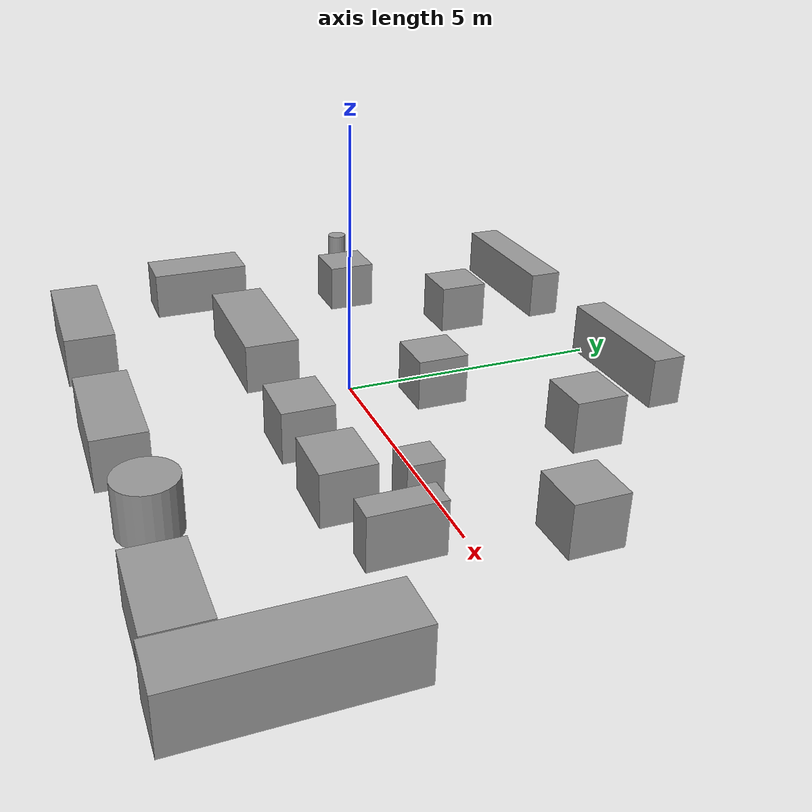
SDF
<?xml version='1.0'?>
<sdf version='1.7'>
  <model name='Clase3'>
    <link name='link_0'>
      <inertial>
        <mass>3.61204</mass>
        <inertia>
          <ixx>4.22813</ixx>
          <ixy>0</ixy>
          <ixz>0</ixz>
          <iyy>0.602007</iyy>
          <iyz>0</iyz>
          <izz>4.22813</izz>
        </inertia>
        <pose>0 0 0 0 -0 0</pose>
      </inertial>
      <pose>6.61801 -3.21464 -0.000816 0 -0 0</pose>
      <visual name='visual'>
        <pose>0 0 0 0 -0 0</pose>
        <geometry>
          <box>
            <size>1 3.61203 1</size>
          </box>
        </geometry>
        <material>
          <lighting>1</lighting>
          <script>
            <uri>file://media/materials/scripts/gazebo.material</uri>
            <name>Gazebo/Grey</name>
          </script>
          <shader type='pixel'/>
        </material>
        <transparency>0</transparency>
        <cast_shadows>1</cast_shadows>
      </visual>
      <collision name='collision'>
        <laser_retro>0</laser_retro>
        <max_contacts>10</max_contacts>
        <pose>0 0 0 0 -0 0</pose>
        <geometry>
          <box>
            <size>1 3.61203 1</size>
          </box>
        </geometry>
        <surface>
          <friction>
            <ode>
              <mu>1</mu>
              <mu2>1</mu2>
              <fdir1>0 0 0</fdir1>
              <slip1>0</slip1>
              <slip2>0</slip2>
            </ode>
            <torsional>
              <coefficient>1</coefficient>
              <patch_radius>0</patch_radius>
              <surface_radius>0</surface_radius>
              <use_patch_radius>1</use_patch_radius>
              <ode>
                <slip>0</slip>
              </ode>
            </torsional>
          </friction>
          <bounce>
            <restitution_coefficient>0</restitution_coefficient>
            <threshold>1e+06</threshold>
          </bounce>
          <contact>
            <collide_without_contact>0</collide_without_contact>
            <collide_without_contact_bitmask>1</collide_without_contact_bitmask>
            <collide_bitmask>1</collide_bitmask>
            <ode>
              <soft_cfm>0</soft_cfm>
              <soft_erp>0.2</soft_erp>
              <kp>1e+13</kp>
              <kd>1</kd>
              <max_vel>0.01</max_vel>
              <min_depth>0</min_depth>
            </ode>
            <bullet>
              <split_impulse>1</split_impulse>
              <split_impulse_penetration_threshold>-0.01</split_impulse_penetration_threshold>
              <soft_cfm>0</soft_cfm>
              <soft_erp>0.2</soft_erp>
              <kp>1e+13</kp>
              <kd>1</kd>
            </bullet>
          </contact>
        </surface>
      </collision>
    </link>
    <link name='link_1'>
      <inertial>
        <mass>1.84807</mass>
        <inertia>
          <ixx>0.308012</ixx>
          <ixy>0</ixy>
          <ixz>0</ixz>
          <iyy>0.679994</iyy>
          <iyz>0</iyz>
          <izz>0.679994</izz>
        </inertia>
        <pose>0 0 0 0 -0 0</pose>
      </inertial>
      <pose>5.17005 -4.46709 -0.000816 0 -0 0</pose>
      <visual name='visual'>
        <pose>0 0 0 0 -0 0</pose>
        <geometry>
          <box>
            <size>1.84807 1 1</size>
          </box>
        </geometry>
        <material>
          <lighting>1</lighting>
          <script>
            <uri>file://media/materials/scripts/gazebo.material</uri>
            <name>Gazebo/Grey</name>
          </script>
          <shader type='pixel'/>
        </material>
        <transparency>0</transparency>
        <cast_shadows>1</cast_shadows>
      </visual>
      <collision name='collision'>
        <laser_retro>0</laser_retro>
        <max_contacts>10</max_contacts>
        <pose>0 0 0 0 -0 0</pose>
        <geometry>
          <box>
            <size>1.84807 1 1</size>
          </box>
        </geometry>
        <surface>
          <friction>
            <ode>
              <mu>1</mu>
              <mu2>1</mu2>
              <fdir1>0 0 0</fdir1>
              <slip1>0</slip1>
              <slip2>0</slip2>
            </ode>
            <torsional>
              <coefficient>1</coefficient>
              <patch_radius>0</patch_radius>
              <surface_radius>0</surface_radius>
              <use_patch_radius>1</use_patch_radius>
              <ode>
                <slip>0</slip>
              </ode>
            </torsional>
          </friction>
          <bounce>
            <restitution_coefficient>0</restitution_coefficient>
            <threshold>1e+06</threshold>
          </bounce>
          <contact>
            <collide_without_contact>0</collide_without_contact>
            <collide_without_contact_bitmask>1</collide_without_contact_bitmask>
            <collide_bitmask>1</collide_bitmask>
            <ode>
              <soft_cfm>0</soft_cfm>
              <soft_erp>0.2</soft_erp>
              <kp>1e+13</kp>
              <kd>1</kd>
              <max_vel>0.01</max_vel>
              <min_depth>0</min_depth>
            </ode>
            <bullet>
              <split_impulse>1</split_impulse>
              <split_impulse_penetration_threshold>-0.01</split_impulse_penetration_threshold>
              <soft_cfm>0</soft_cfm>
              <soft_erp>0.2</soft_erp>
              <kp>1e+13</kp>
              <kd>1</kd>
            </bullet>
          </contact>
        </surface>
      </collision>
    </link>
    <link name='link_10'>
      <inertial>
        <mass>1</mass>
        <inertia>
          <ixx>0.166667</ixx>
          <ixy>0</ixy>
          <ixz>0</ixz>
          <iyy>0.166667</iyy>
          <iyz>0</iyz>
          <izz>0.166667</izz>
        </inertia>
      </inertial>
      <pose>-0.13853 1.78004 -0.000816 0 -0 0</pose>
      <visual name='visual'>
        <pose>0 0 0 0 -0 0</pose>
        <geometry>
          <box>
            <size>1 1 1</size>
          </box>
        </geometry>
        <material>
          <lighting>1</lighting>
          <script>
            <uri>file://media/materials/scripts/gazebo.material</uri>
            <name>Gazebo/Grey</name>
          </script>
          <shader type='pixel'/>
        </material>
        <transparency>0</transparency>
        <cast_shadows>1</cast_shadows>
      </visual>
      <collision name='collision'>
        <laser_retro>0</laser_retro>
        <max_contacts>10</max_contacts>
        <pose>0 0 0 0 -0 0</pose>
        <geometry>
          <box>
            <size>1 1 1</size>
          </box>
        </geometry>
        <surface>
          <friction>
            <ode>
              <mu>1</mu>
              <mu2>1</mu2>
              <fdir1>0 0 0</fdir1>
              <slip1>0</slip1>
              <slip2>0</slip2>
            </ode>
            <torsional>
              <coefficient>1</coefficient>
              <patch_radius>0</patch_radius>
              <surface_radius>0</surface_radius>
              <use_patch_radius>1</use_patch_radius>
              <ode>
                <slip>0</slip>
              </ode>
            </torsional>
          </friction>
          <bounce>
            <restitution_coefficient>0</restitution_coefficient>
            <threshold>1e+06</threshold>
          </bounce>
          <contact>
            <collide_without_contact>0</collide_without_contact>
            <collide_without_contact_bitmask>1</collide_without_contact_bitmask>
            <collide_bitmask>1</collide_bitmask>
            <ode>
              <soft_cfm>0</soft_cfm>
              <soft_erp>0.2</soft_erp>
              <kp>1e+13</kp>
              <kd>1</kd>
              <max_vel>0.01</max_vel>
              <min_depth>0</min_depth>
            </ode>
            <bullet>
              <split_impulse>1</split_impulse>
              <split_impulse_penetration_threshold>-0.01</split_impulse_penetration_threshold>
              <soft_cfm>0</soft_cfm>
              <soft_erp>0.2</soft_erp>
              <kp>1e+13</kp>
              <kd>1</kd>
            </bullet>
          </contact>
        </surface>
      </collision>
    </link>
    <link name='link_11'>
      <inertial>
        <mass>1</mass>
        <inertia>
          <ixx>0.166667</ixx>
          <ixy>0</ixy>
          <ixz>0</ixz>
          <iyy>0.166667</iyy>
          <iyz>0</iyz>
          <izz>0.166667</izz>
        </inertia>
      </inertial>
      <pose>-5.26532 1.78358 -0.000816 0 -0 0</pose>
      <visual name='visual'>
        <pose>0 0 0 0 -0 0</pose>
        <geometry>
          <box>
            <size>1 1 1</size>
          </box>
        </geometry>
        <material>
          <lighting>1</lighting>
          <script>
            <uri>file://media/materials/scripts/gazebo.material</uri>
            <name>Gazebo/Grey</name>
          </script>
          <shader type='pixel'/>
        </material>
        <transparency>0</transparency>
        <cast_shadows>1</cast_shadows>
      </visual>
      <collision name='collision'>
        <laser_retro>0</laser_retro>
        <max_contacts>10</max_contacts>
        <pose>0 0 0 0 -0 0</pose>
        <geometry>
          <box>
            <size>1 1 1</size>
          </box>
        </geometry>
        <surface>
          <friction>
            <ode>
              <mu>1</mu>
              <mu2>1</mu2>
              <fdir1>0 0 0</fdir1>
              <slip1>0</slip1>
              <slip2>0</slip2>
            </ode>
            <torsional>
              <coefficient>1</coefficient>
              <patch_radius>0</patch_radius>
              <surface_radius>0</surface_radius>
              <use_patch_radius>1</use_patch_radius>
              <ode>
                <slip>0</slip>
              </ode>
            </torsional>
          </friction>
          <bounce>
            <restitution_coefficient>0</restitution_coefficient>
            <threshold>1e+06</threshold>
          </bounce>
          <contact>
            <collide_without_contact>0</collide_without_contact>
            <collide_without_contact_bitmask>1</collide_without_contact_bitmask>
            <collide_bitmask>1</collide_bitmask>
            <ode>
              <soft_cfm>0</soft_cfm>
              <soft_erp>0.2</soft_erp>
              <kp>1e+13</kp>
              <kd>1</kd>
              <max_vel>0.01</max_vel>
              <min_depth>0</min_depth>
            </ode>
            <bullet>
              <split_impulse>1</split_impulse>
              <split_impulse_penetration_threshold>-0.01</split_impulse_penetration_threshold>
              <soft_cfm>0</soft_cfm>
              <soft_erp>0.2</soft_erp>
              <kp>1e+13</kp>
              <kd>1</kd>
            </bullet>
          </contact>
        </surface>
      </collision>
    </link>
    <link name='link_12'>
      <inertial>
        <mass>1</mass>
        <inertia>
          <ixx>0.166667</ixx>
          <ixy>0</ixy>
          <ixz>0</ixz>
          <iyy>0.166667</iyy>
          <iyz>0</iyz>
          <izz>0.166667</izz>
        </inertia>
      </inertial>
      <pose>2.27723 3.7391 -0.000816 0 -0 0</pose>
      <visual name='visual'>
        <pose>0 0 0 0 -0 0</pose>
        <geometry>
          <box>
            <size>1 1 1</size>
          </box>
        </geometry>
        <material>
          <lighting>1</lighting>
          <script>
            <uri>file://media/materials/scripts/gazebo.material</uri>
            <name>Gazebo/Grey</name>
          </script>
          <shader type='pixel'/>
        </material>
        <transparency>0</transparency>
        <cast_shadows>1</cast_shadows>
      </visual>
      <collision name='collision'>
        <laser_retro>0</laser_retro>
        <max_contacts>10</max_contacts>
        <pose>0 0 0 0 -0 0</pose>
        <geometry>
          <box>
            <size>1 1 1</size>
          </box>
        </geometry>
        <surface>
          <friction>
            <ode>
              <mu>1</mu>
              <mu2>1</mu2>
              <fdir1>0 0 0</fdir1>
              <slip1>0</slip1>
              <slip2>0</slip2>
            </ode>
            <torsional>
              <coefficient>1</coefficient>
              <patch_radius>0</patch_radius>
              <surface_radius>0</surface_radius>
              <use_patch_radius>1</use_patch_radius>
              <ode>
                <slip>0</slip>
              </ode>
            </torsional>
          </friction>
          <bounce>
            <restitution_coefficient>0</restitution_coefficient>
            <threshold>1e+06</threshold>
          </bounce>
          <contact>
            <collide_without_contact>0</collide_without_contact>
            <collide_without_contact_bitmask>1</collide_without_contact_bitmask>
            <collide_bitmask>1</collide_bitmask>
            <ode>
              <soft_cfm>0</soft_cfm>
              <soft_erp>0.2</soft_erp>
              <kp>1e+13</kp>
              <kd>1</kd>
              <max_vel>0.01</max_vel>
              <min_depth>0</min_depth>
            </ode>
            <bullet>
              <split_impulse>1</split_impulse>
              <split_impulse_penetration_threshold>-0.01</split_impulse_penetration_threshold>
              <soft_cfm>0</soft_cfm>
              <soft_erp>0.2</soft_erp>
              <kp>1e+13</kp>
              <kd>1</kd>
            </bullet>
          </contact>
        </surface>
      </collision>
    </link>
    <link name='link_13'>
      <inertial>
        <mass>1</mass>
        <inertia>
          <ixx>0.166667</ixx>
          <ixy>0</ixy>
          <ixz>0</ixz>
          <iyy>0.166667</iyy>
          <iyz>0</iyz>
          <izz>0.166667</izz>
        </inertia>
      </inertial>
      <pose>-3.27919 3.70693 -0.000816 0 -0 0</pose>
      <visual name='visual'>
        <pose>0 0 0 0 -0 0</pose>
        <geometry>
          <box>
            <size>1 1 1</size>
          </box>
        </geometry>
        <material>
          <lighting>1</lighting>
          <script>
            <uri>file://media/materials/scripts/gazebo.material</uri>
            <name>Gazebo/Grey</name>
          </script>
          <shader type='pixel'/>
        </material>
        <transparency>0</transparency>
        <cast_shadows>1</cast_shadows>
      </visual>
      <collision name='collision'>
        <laser_retro>0</laser_retro>
        <max_contacts>10</max_contacts>
        <pose>0 0 0 0 -0 0</pose>
        <geometry>
          <box>
            <size>1 1 1</size>
          </box>
        </geometry>
        <surface>
          <friction>
            <ode>
              <mu>1</mu>
              <mu2>1</mu2>
              <fdir1>0 0 0</fdir1>
              <slip1>0</slip1>
              <slip2>0</slip2>
            </ode>
            <torsional>
              <coefficient>1</coefficient>
              <patch_radius>0</patch_radius>
              <surface_radius>0</surface_radius>
              <use_patch_radius>1</use_patch_radius>
              <ode>
                <slip>0</slip>
              </ode>
            </torsional>
          </friction>
          <bounce>
            <restitution_coefficient>0</restitution_coefficient>
            <threshold>1e+06</threshold>
          </bounce>
          <contact>
            <collide_without_contact>0</collide_without_contact>
            <collide_without_contact_bitmask>1</collide_without_contact_bitmask>
            <collide_bitmask>1</collide_bitmask>
            <ode>
              <soft_cfm>0</soft_cfm>
              <soft_erp>0.2</soft_erp>
              <kp>1e+13</kp>
              <kd>1</kd>
              <max_vel>0.01</max_vel>
              <min_depth>0</min_depth>
            </ode>
            <bullet>
              <split_impulse>1</split_impulse>
              <split_impulse_penetration_threshold>-0.01</split_impulse_penetration_threshold>
              <soft_cfm>0</soft_cfm>
              <soft_erp>0.2</soft_erp>
              <kp>1e+13</kp>
              <kd>1</kd>
            </bullet>
          </contact>
        </surface>
      </collision>
    </link>
    <link name='link_14'>
      <inertial>
        <mass>2.12787</mass>
        <inertia>
          <ixx>0.259623</ixx>
          <ixy>0</ixy>
          <ixz>0</ixz>
          <iyy>1.90718</iyy>
          <iyz>0</iyz>
          <izz>1.81216</izz>
        </inertia>
        <pose>0 0 0 0 -0 0</pose>
      </inertial>
      <pose>-4.39907 5.79212 -0.000816 0 -0 0</pose>
      <visual name='visual'>
        <pose>0 0 0 0 -0 0</pose>
        <geometry>
          <box>
            <size>3.12337 0.68127 1</size>
          </box>
        </geometry>
        <material>
          <lighting>1</lighting>
          <script>
            <uri>file://media/materials/scripts/gazebo.material</uri>
            <name>Gazebo/Grey</name>
          </script>
          <shader type='pixel'/>
        </material>
        <transparency>0</transparency>
        <cast_shadows>1</cast_shadows>
      </visual>
      <collision name='collision'>
        <laser_retro>0</laser_retro>
        <max_contacts>10</max_contacts>
        <pose>0 0 0 0 -0 0</pose>
        <geometry>
          <box>
            <size>3.12337 0.68127 1</size>
          </box>
        </geometry>
        <surface>
          <friction>
            <ode>
              <mu>1</mu>
              <mu2>1</mu2>
              <fdir1>0 0 0</fdir1>
              <slip1>0</slip1>
              <slip2>0</slip2>
            </ode>
            <torsional>
              <coefficient>1</coefficient>
              <patch_radius>0</patch_radius>
              <surface_radius>0</surface_radius>
              <use_patch_radius>1</use_patch_radius>
              <ode>
                <slip>0</slip>
              </ode>
            </torsional>
          </friction>
          <bounce>
            <restitution_coefficient>0</restitution_coefficient>
            <threshold>1e+06</threshold>
          </bounce>
          <contact>
            <collide_without_contact>0</collide_without_contact>
            <collide_without_contact_bitmask>1</collide_without_contact_bitmask>
            <collide_bitmask>1</collide_bitmask>
            <ode>
              <soft_cfm>0</soft_cfm>
              <soft_erp>0.2</soft_erp>
              <kp>1e+13</kp>
              <kd>1</kd>
              <max_vel>0.01</max_vel>
              <min_depth>0</min_depth>
            </ode>
            <bullet>
              <split_impulse>1</split_impulse>
              <split_impulse_penetration_threshold>-0.01</split_impulse_penetration_threshold>
              <soft_cfm>0</soft_cfm>
              <soft_erp>0.2</soft_erp>
              <kp>1e+13</kp>
              <kd>1</kd>
            </bullet>
          </contact>
        </surface>
      </collision>
    </link>
    <link name='link_15'>
      <inertial>
        <mass>2.40246</mass>
        <inertia>
          <ixx>0.400409</ixx>
          <ixy>0</ixy>
          <ixz>0</ixz>
          <iyy>1.35574</iyy>
          <iyz>0</iyz>
          <izz>1.35574</izz>
        </inertia>
        <pose>0 0 0 0 -0 0</pose>
      </inertial>
      <pose>-0.017267 -4.46727 -0.000816 0 -0 0</pose>
      <visual name='visual'>
        <pose>0 0 0 0 -0 0</pose>
        <geometry>
          <box>
            <size>2.40245 1 1</size>
          </box>
        </geometry>
        <material>
          <lighting>1</lighting>
          <script>
            <uri>file://media/materials/scripts/gazebo.material</uri>
            <name>Gazebo/Grey</name>
          </script>
          <shader type='pixel'/>
        </material>
        <transparency>0</transparency>
        <cast_shadows>1</cast_shadows>
      </visual>
      <collision name='collision'>
        <laser_retro>0</laser_retro>
        <max_contacts>10</max_contacts>
        <pose>0 0 0 0 -0 0</pose>
        <geometry>
          <box>
            <size>2.40245 1 1</size>
          </box>
        </geometry>
        <surface>
          <friction>
            <ode>
              <mu>1</mu>
              <mu2>1</mu2>
              <fdir1>0 0 0</fdir1>
              <slip1>0</slip1>
              <slip2>0</slip2>
            </ode>
            <torsional>
              <coefficient>1</coefficient>
              <patch_radius>0</patch_radius>
              <surface_radius>0</surface_radius>
              <use_patch_radius>1</use_patch_radius>
              <ode>
                <slip>0</slip>
              </ode>
            </torsional>
          </friction>
          <bounce>
            <restitution_coefficient>0</restitution_coefficient>
            <threshold>1e+06</threshold>
          </bounce>
          <contact>
            <collide_without_contact>0</collide_without_contact>
            <collide_without_contact_bitmask>1</collide_without_contact_bitmask>
            <collide_bitmask>1</collide_bitmask>
            <ode>
              <soft_cfm>0</soft_cfm>
              <soft_erp>0.2</soft_erp>
              <kp>1e+13</kp>
              <kd>1</kd>
              <max_vel>0.01</max_vel>
              <min_depth>0</min_depth>
            </ode>
            <bullet>
              <split_impulse>1</split_impulse>
              <split_impulse_penetration_threshold>-0.01</split_impulse_penetration_threshold>
              <soft_cfm>0</soft_cfm>
              <soft_erp>0.2</soft_erp>
              <kp>1e+13</kp>
              <kd>1</kd>
            </bullet>
          </contact>
        </surface>
      </collision>
    </link>
    <link name='link_16'>
      <inertial>
        <mass>0.699838</mass>
        <inertia>
          <ixx>0.163036</ixx>
          <ixy>0</ixy>
          <ixz>0</ixz>
          <iyy>0.0742282</iyy>
          <iyz>0</iyz>
          <izz>0.120624</izz>
        </inertia>
        <pose>0 0 0 0 -0 0</pose>
      </inertial>
      <pose>4.43541 -0.77658 -0.000816 0 -0 0</pose>
      <visual name='visual'>
        <pose>0 0 0 0 -0 0</pose>
        <geometry>
          <box>
            <size>0.522282 1.33998 1</size>
          </box>
        </geometry>
        <material>
          <lighting>1</lighting>
          <script>
            <uri>file://media/materials/scripts/gazebo.material</uri>
            <name>Gazebo/Grey</name>
          </script>
          <shader type='pixel'/>
        </material>
        <transparency>0</transparency>
        <cast_shadows>1</cast_shadows>
      </visual>
      <collision name='collision'>
        <laser_retro>0</laser_retro>
        <max_contacts>10</max_contacts>
        <pose>0 0 0 0 -0 0</pose>
        <geometry>
          <box>
            <size>0.522282 1.33998 1</size>
          </box>
        </geometry>
        <surface>
          <friction>
            <ode>
              <mu>1</mu>
              <mu2>1</mu2>
              <fdir1>0 0 0</fdir1>
              <slip1>0</slip1>
              <slip2>0</slip2>
            </ode>
            <torsional>
              <coefficient>1</coefficient>
              <patch_radius>0</patch_radius>
              <surface_radius>0</surface_radius>
              <use_patch_radius>1</use_patch_radius>
              <ode>
                <slip>0</slip>
              </ode>
            </torsional>
          </friction>
          <bounce>
            <restitution_coefficient>0</restitution_coefficient>
            <threshold>1e+06</threshold>
          </bounce>
          <contact>
            <collide_without_contact>0</collide_without_contact>
            <collide_without_contact_bitmask>1</collide_without_contact_bitmask>
            <collide_bitmask>1</collide_bitmask>
            <ode>
              <soft_cfm>0</soft_cfm>
              <soft_erp>0.2</soft_erp>
              <kp>1e+13</kp>
              <kd>1</kd>
              <max_vel>0.01</max_vel>
              <min_depth>0</min_depth>
            </ode>
            <bullet>
              <split_impulse>1</split_impulse>
              <split_impulse_penetration_threshold>-0.01</split_impulse_penetration_threshold>
              <soft_cfm>0</soft_cfm>
              <soft_erp>0.2</soft_erp>
              <kp>1e+13</kp>
              <kd>1</kd>
            </bullet>
          </contact>
        </surface>
      </collision>
    </link>
    <link name='link_18'>
      <inertial>
        <mass>1.84162</mass>
        <inertia>
          <ixx>0.220326</ixx>
          <ixy>0</ixy>
          <ixz>0</ixz>
          <iyy>1.34835</iyy>
          <iyz>0</iyz>
          <izz>1.26174</izz>
        </inertia>
        <pose>0 0 0 0 -0 0</pose>
      </inertial>
      <pose>0.402204 5.82161 -0.000816 0 -0 0</pose>
      <visual name='visual'>
        <pose>0 0 0 0 -0 0</pose>
        <geometry>
          <box>
            <size>2.79032 0.660037 1</size>
          </box>
        </geometry>
        <material>
          <lighting>1</lighting>
          <script>
            <uri>file://media/materials/scripts/gazebo.material</uri>
            <name>Gazebo/Grey</name>
          </script>
          <shader type='pixel'/>
        </material>
        <transparency>0</transparency>
        <cast_shadows>1</cast_shadows>
      </visual>
      <collision name='collision'>
        <laser_retro>0</laser_retro>
        <max_contacts>10</max_contacts>
        <pose>0 0 0 0 -0 0</pose>
        <geometry>
          <box>
            <size>2.79032 0.660037 1</size>
          </box>
        </geometry>
        <surface>
          <friction>
            <ode>
              <mu>1</mu>
              <mu2>1</mu2>
              <fdir1>0 0 0</fdir1>
              <slip1>0</slip1>
              <slip2>0</slip2>
            </ode>
            <torsional>
              <coefficient>1</coefficient>
              <patch_radius>0</patch_radius>
              <surface_radius>0</surface_radius>
              <use_patch_radius>1</use_patch_radius>
              <ode>
                <slip>0</slip>
              </ode>
            </torsional>
          </friction>
          <bounce>
            <restitution_coefficient>0</restitution_coefficient>
            <threshold>1e+06</threshold>
          </bounce>
          <contact>
            <collide_without_contact>0</collide_without_contact>
            <collide_without_contact_bitmask>1</collide_without_contact_bitmask>
            <collide_bitmask>1</collide_bitmask>
            <ode>
              <soft_cfm>0</soft_cfm>
              <soft_erp>0.2</soft_erp>
              <kp>1e+13</kp>
              <kd>1</kd>
              <max_vel>0.01</max_vel>
              <min_depth>0</min_depth>
            </ode>
            <bullet>
              <split_impulse>1</split_impulse>
              <split_impulse_penetration_threshold>-0.01</split_impulse_penetration_threshold>
              <soft_cfm>0</soft_cfm>
              <soft_erp>0.2</soft_erp>
              <kp>1e+13</kp>
              <kd>1</kd>
            </bullet>
          </contact>
        </surface>
      </collision>
    </link>
    <link name='link_2'>
      <inertial>
        <mass>1.21978</mass>
        <inertia>
          <ixx>0.203297</ixx>
          <ixy>0</ixy>
          <ixz>0</ixz>
          <iyy>0.252889</iyy>
          <iyz>0</iyz>
          <izz>0.252889</izz>
        </inertia>
        <pose>0 0 0 0 -0 0</pose>
      </inertial>
      <pose>2.79577 -1.2372 -0.000816 0 -0 0</pose>
      <visual name='visual'>
        <pose>0 0 0 0 -0 0</pose>
        <geometry>
          <box>
            <size>1.21978 1 1</size>
          </box>
        </geometry>
        <material>
          <lighting>1</lighting>
          <script>
            <uri>file://media/materials/scripts/gazebo.material</uri>
            <name>Gazebo/Grey</name>
          </script>
          <shader type='pixel'/>
        </material>
        <transparency>0</transparency>
        <cast_shadows>1</cast_shadows>
      </visual>
      <collision name='collision'>
        <laser_retro>0</laser_retro>
        <max_contacts>10</max_contacts>
        <pose>0 0 0 0 -0 0</pose>
        <geometry>
          <box>
            <size>1.21978 1 1</size>
          </box>
        </geometry>
        <surface>
          <friction>
            <ode>
              <mu>1</mu>
              <mu2>1</mu2>
              <fdir1>0 0 0</fdir1>
              <slip1>0</slip1>
              <slip2>0</slip2>
            </ode>
            <torsional>
              <coefficient>1</coefficient>
              <patch_radius>0</patch_radius>
              <surface_radius>0</surface_radius>
              <use_patch_radius>1</use_patch_radius>
              <ode>
                <slip>0</slip>
              </ode>
            </torsional>
          </friction>
          <bounce>
            <restitution_coefficient>0</restitution_coefficient>
            <threshold>1e+06</threshold>
          </bounce>
          <contact>
            <collide_without_contact>0</collide_without_contact>
            <collide_without_contact_bitmask>1</collide_without_contact_bitmask>
            <collide_bitmask>1</collide_bitmask>
            <ode>
              <soft_cfm>0</soft_cfm>
              <soft_erp>0.2</soft_erp>
              <kp>1e+13</kp>
              <kd>1</kd>
              <max_vel>0.01</max_vel>
              <min_depth>0</min_depth>
            </ode>
            <bullet>
              <split_impulse>1</split_impulse>
              <split_impulse_penetration_threshold>-0.01</split_impulse_penetration_threshold>
              <soft_cfm>0</soft_cfm>
              <soft_erp>0.2</soft_erp>
              <kp>1e+13</kp>
              <kd>1</kd>
            </bullet>
          </contact>
        </surface>
      </collision>
    </link>
    <link name='link_21'>
      <inertial>
        <mass>0.176204</mass>
        <inertia>
          <ixx>0.0166241</ixx>
          <ixy>0</ixy>
          <ixz>0</ixz>
          <iyy>0.0166241</iyy>
          <iyz>0</iyz>
          <izz>0.00388098</izz>
        </inertia>
        <pose>0 0 0 0 -0 0</pose>
      </inertial>
      <pose>-6.98219 2.18202 -0.000816 0 -0 0</pose>
      <visual name='visual'>
        <pose>0 0 0 0 -0 0</pose>
        <geometry>
          <cylinder>
            <radius>0.209884</radius>
            <length>1</length>
          </cylinder>
        </geometry>
        <material>
          <lighting>1</lighting>
          <script>
            <uri>file://media/materials/scripts/gazebo.material</uri>
            <name>Gazebo/Grey</name>
          </script>
          <shader type='pixel'/>
        </material>
        <transparency>0</transparency>
        <cast_shadows>1</cast_shadows>
      </visual>
      <collision name='collision'>
        <laser_retro>0</laser_retro>
        <max_contacts>10</max_contacts>
        <pose>0 0 0 0 -0 0</pose>
        <geometry>
          <cylinder>
            <radius>0.209884</radius>
            <length>1</length>
          </cylinder>
        </geometry>
        <surface>
          <friction>
            <ode>
              <mu>1</mu>
              <mu2>1</mu2>
              <fdir1>0 0 0</fdir1>
              <slip1>0</slip1>
              <slip2>0</slip2>
            </ode>
            <torsional>
              <coefficient>1</coefficient>
              <patch_radius>0</patch_radius>
              <surface_radius>0</surface_radius>
              <use_patch_radius>1</use_patch_radius>
              <ode>
                <slip>0</slip>
              </ode>
            </torsional>
          </friction>
          <bounce>
            <restitution_coefficient>0</restitution_coefficient>
            <threshold>1e+06</threshold>
          </bounce>
          <contact>
            <collide_without_contact>0</collide_without_contact>
            <collide_without_contact_bitmask>1</collide_without_contact_bitmask>
            <collide_bitmask>1</collide_bitmask>
            <ode>
              <soft_cfm>0</soft_cfm>
              <soft_erp>0.2</soft_erp>
              <kp>1e+13</kp>
              <kd>1</kd>
              <max_vel>0.01</max_vel>
              <min_depth>0</min_depth>
            </ode>
            <bullet>
              <split_impulse>1</split_impulse>
              <split_impulse_penetration_threshold>-0.01</split_impulse_penetration_threshold>
              <soft_cfm>0</soft_cfm>
              <soft_erp>0.2</soft_erp>
              <kp>1e+13</kp>
              <kd>1</kd>
            </bullet>
          </contact>
        </surface>
      </collision>
    </link>
    <link name='link_22'>
      <inertial>
        <mass>0.402922</mass>
        <inertia>
          <ixx>0.0477587</ixx>
          <ixy>0</ixy>
          <ixz>0</ixz>
          <iyy>0.0464824</iyy>
          <iyz>0</iyz>
          <izz>0.0270875</izz>
        </inertia>
        <pose>0 0 0 0 -0 0</pose>
      </inertial>
      <pose>3.3404 -0.032806 -0.000816 0 -0 0</pose>
      <visual name='visual'>
        <pose>0 0 0 0 -0 0</pose>
        <geometry>
          <box>
            <size>0.619969 0.649901 1</size>
          </box>
        </geometry>
        <material>
          <lighting>1</lighting>
          <script>
            <uri>file://media/materials/scripts/gazebo.material</uri>
            <name>Gazebo/Grey</name>
          </script>
          <shader type='pixel'/>
        </material>
        <transparency>0</transparency>
        <cast_shadows>1</cast_shadows>
      </visual>
      <collision name='collision'>
        <laser_retro>0</laser_retro>
        <max_contacts>10</max_contacts>
        <pose>0 0 0 0 -0 0</pose>
        <geometry>
          <box>
            <size>0.619969 0.649901 1</size>
          </box>
        </geometry>
        <surface>
          <friction>
            <ode>
              <mu>1</mu>
              <mu2>1</mu2>
              <fdir1>0 0 0</fdir1>
              <slip1>0</slip1>
              <slip2>0</slip2>
            </ode>
            <torsional>
              <coefficient>1</coefficient>
              <patch_radius>0</patch_radius>
              <surface_radius>0</surface_radius>
              <use_patch_radius>1</use_patch_radius>
              <ode>
                <slip>0</slip>
              </ode>
            </torsional>
          </friction>
          <bounce>
            <restitution_coefficient>0</restitution_coefficient>
            <threshold>1e+06</threshold>
          </bounce>
          <contact>
            <collide_without_contact>0</collide_without_contact>
            <collide_without_contact_bitmask>1</collide_without_contact_bitmask>
            <collide_bitmask>1</collide_bitmask>
            <ode>
              <soft_cfm>0</soft_cfm>
              <soft_erp>0.2</soft_erp>
              <kp>1e+13</kp>
              <kd>1</kd>
              <max_vel>0.01</max_vel>
              <min_depth>0</min_depth>
            </ode>
            <bullet>
              <split_impulse>1</split_impulse>
              <split_impulse_penetration_threshold>-0.01</split_impulse_penetration_threshold>
              <soft_cfm>0</soft_cfm>
              <soft_erp>0.2</soft_erp>
              <kp>1e+13</kp>
              <kd>1</kd>
            </bullet>
          </contact>
        </surface>
      </collision>
    </link>
    <link name='link_3'>
      <inertial>
        <mass>1.17509</mass>
        <inertia>
          <ixx>0.195848</ixx>
          <ixy>0</ixy>
          <ixz>0</ixz>
          <iyy>0.23314</iyy>
          <iyz>0</iyz>
          <izz>0.23314</izz>
        </inertia>
        <pose>0 0 0 0 -0 0</pose>
      </inertial>
      <pose>0.786978 -1.24819 -0.000816 0 -0 0</pose>
      <visual name='visual'>
        <pose>0 0 0 0 -0 0</pose>
        <geometry>
          <box>
            <size>1.17509 1 1</size>
          </box>
        </geometry>
        <material>
          <lighting>1</lighting>
          <script>
            <uri>file://media/materials/scripts/gazebo.material</uri>
            <name>Gazebo/Grey</name>
          </script>
          <shader type='pixel'/>
        </material>
        <transparency>0</transparency>
        <cast_shadows>1</cast_shadows>
      </visual>
      <collision name='collision'>
        <laser_retro>0</laser_retro>
        <max_contacts>10</max_contacts>
        <pose>0 0 0 0 -0 0</pose>
        <geometry>
          <box>
            <size>1.17509 1 1</size>
          </box>
        </geometry>
        <surface>
          <friction>
            <ode>
              <mu>1</mu>
              <mu2>1</mu2>
              <fdir1>0 0 0</fdir1>
              <slip1>0</slip1>
              <slip2>0</slip2>
            </ode>
            <torsional>
              <coefficient>1</coefficient>
              <patch_radius>0</patch_radius>
              <surface_radius>0</surface_radius>
              <use_patch_radius>1</use_patch_radius>
              <ode>
                <slip>0</slip>
              </ode>
            </torsional>
          </friction>
          <bounce>
            <restitution_coefficient>0</restitution_coefficient>
            <threshold>1e+06</threshold>
          </bounce>
          <contact>
            <collide_without_contact>0</collide_without_contact>
            <collide_without_contact_bitmask>1</collide_without_contact_bitmask>
            <collide_bitmask>1</collide_bitmask>
            <ode>
              <soft_cfm>0</soft_cfm>
              <soft_erp>0.2</soft_erp>
              <kp>1e+13</kp>
              <kd>1</kd>
              <max_vel>0.01</max_vel>
              <min_depth>0</min_depth>
            </ode>
            <bullet>
              <split_impulse>1</split_impulse>
              <split_impulse_penetration_threshold>-0.01</split_impulse_penetration_threshold>
              <soft_cfm>0</soft_cfm>
              <soft_erp>0.2</soft_erp>
              <kp>1e+13</kp>
              <kd>1</kd>
            </bullet>
          </contact>
        </surface>
      </collision>
    </link>
    <link name='link_4'>
      <inertial>
        <mass>3.07322</mass>
        <inertia>
          <ixx>0.555324</ixx>
          <ixy>0</ixy>
          <ixz>0</ixz>
          <iyy>2.3263</iyy>
          <iyz>0</iyz>
          <izz>2.36942</izz>
        </inertia>
        <pose>0 0 0 0 -0 0</pose>
      </inertial>
      <pose>-2.81037 -1.11205 -0.000816 0 -0 0</pose>
      <visual name='visual'>
        <pose>0 0 0 0 -0 0</pose>
        <geometry>
          <box>
            <size>2.84315 1.08091 1</size>
          </box>
        </geometry>
        <material>
          <lighting>1</lighting>
          <script>
            <uri>file://media/materials/scripts/gazebo.material</uri>
            <name>Gazebo/Grey</name>
          </script>
          <shader type='pixel'/>
        </material>
        <transparency>0</transparency>
        <cast_shadows>1</cast_shadows>
      </visual>
      <collision name='collision'>
        <laser_retro>0</laser_retro>
        <max_contacts>10</max_contacts>
        <pose>0 0 0 0 -0 0</pose>
        <geometry>
          <box>
            <size>2.84315 1.08091 1</size>
          </box>
        </geometry>
        <surface>
          <friction>
            <ode>
              <mu>1</mu>
              <mu2>1</mu2>
              <fdir1>0 0 0</fdir1>
              <slip1>0</slip1>
              <slip2>0</slip2>
            </ode>
            <torsional>
              <coefficient>1</coefficient>
              <patch_radius>0</patch_radius>
              <surface_radius>0</surface_radius>
              <use_patch_radius>1</use_patch_radius>
              <ode>
                <slip>0</slip>
              </ode>
            </torsional>
          </friction>
          <bounce>
            <restitution_coefficient>0</restitution_coefficient>
            <threshold>1e+06</threshold>
          </bounce>
          <contact>
            <collide_without_contact>0</collide_without_contact>
            <collide_without_contact_bitmask>1</collide_without_contact_bitmask>
            <collide_bitmask>1</collide_bitmask>
            <ode>
              <soft_cfm>0</soft_cfm>
              <soft_erp>0.2</soft_erp>
              <kp>1e+13</kp>
              <kd>1</kd>
              <max_vel>0.01</max_vel>
              <min_depth>0</min_depth>
            </ode>
            <bullet>
              <split_impulse>1</split_impulse>
              <split_impulse_penetration_threshold>-0.01</split_impulse_penetration_threshold>
              <soft_cfm>0</soft_cfm>
              <soft_erp>0.2</soft_erp>
              <kp>1e+13</kp>
              <kd>1</kd>
            </bullet>
          </contact>
        </surface>
      </collision>
    </link>
    <link name='link_5'>
      <inertial>
        <mass>2.08863</mass>
        <inertia>
          <ixx>0.933338</ixx>
          <ixy>0</ixy>
          <ixz>0</ixz>
          <iyy>0.348106</iyy>
          <iyz>0</iyz>
          <izz>0.933338</izz>
        </inertia>
        <pose>0 0 0 0 -0 0</pose>
      </inertial>
      <pose>-6.15665 -1.58566 -0.000816 0 -0 0</pose>
      <visual name='visual'>
        <pose>0 0 0 0 -0 0</pose>
        <geometry>
          <box>
            <size>1 2.08863 1</size>
          </box>
        </geometry>
        <material>
          <lighting>1</lighting>
          <script>
            <uri>file://media/materials/scripts/gazebo.material</uri>
            <name>Gazebo/Grey</name>
          </script>
          <shader type='pixel'/>
        </material>
        <transparency>0</transparency>
        <cast_shadows>1</cast_shadows>
      </visual>
      <collision name='collision'>
        <laser_retro>0</laser_retro>
        <max_contacts>10</max_contacts>
        <pose>0 0 0 0 -0 0</pose>
        <geometry>
          <box>
            <size>1 2.08863 1</size>
          </box>
        </geometry>
        <surface>
          <friction>
            <ode>
              <mu>1</mu>
              <mu2>1</mu2>
              <fdir1>0 0 0</fdir1>
              <slip1>0</slip1>
              <slip2>0</slip2>
            </ode>
            <torsional>
              <coefficient>1</coefficient>
              <patch_radius>0</patch_radius>
              <surface_radius>0</surface_radius>
              <use_patch_radius>1</use_patch_radius>
              <ode>
                <slip>0</slip>
              </ode>
            </torsional>
          </friction>
          <bounce>
            <restitution_coefficient>0</restitution_coefficient>
            <threshold>1e+06</threshold>
          </bounce>
          <contact>
            <collide_without_contact>0</collide_without_contact>
            <collide_without_contact_bitmask>1</collide_without_contact_bitmask>
            <collide_bitmask>1</collide_bitmask>
            <ode>
              <soft_cfm>0</soft_cfm>
              <soft_erp>0.2</soft_erp>
              <kp>1e+13</kp>
              <kd>1</kd>
              <max_vel>0.01</max_vel>
              <min_depth>0</min_depth>
            </ode>
            <bullet>
              <split_impulse>1</split_impulse>
              <split_impulse_penetration_threshold>-0.01</split_impulse_penetration_threshold>
              <soft_cfm>0</soft_cfm>
              <soft_erp>0.2</soft_erp>
              <kp>1e+13</kp>
              <kd>1</kd>
            </bullet>
          </contact>
        </surface>
      </collision>
    </link>
    <link name='link_6'>
      <inertial>
        <mass>2.78143</mass>
        <inertia>
          <ixx>0.463572</ixx>
          <ixy>0</ixy>
          <ixz>0</ixz>
          <iyy>2.02496</iyy>
          <iyz>0</iyz>
          <izz>2.02496</izz>
        </inertia>
        <pose>0 0 0 0 -0 0</pose>
      </inertial>
      <pose>-4.25145 -4.44531 -0.000816 0 -0 0</pose>
      <visual name='visual'>
        <pose>0 0 0 0 -0 0</pose>
        <geometry>
          <box>
            <size>2.78143 1 1</size>
          </box>
        </geometry>
        <material>
          <lighting>1</lighting>
          <script>
            <uri>file://media/materials/scripts/gazebo.material</uri>
            <name>Gazebo/Grey</name>
          </script>
          <shader type='pixel'/>
        </material>
        <transparency>0</transparency>
        <cast_shadows>1</cast_shadows>
      </visual>
      <collision name='collision'>
        <laser_retro>0</laser_retro>
        <max_contacts>10</max_contacts>
        <pose>0 0 0 0 -0 0</pose>
        <geometry>
          <box>
            <size>2.78143 1 1</size>
          </box>
        </geometry>
        <surface>
          <friction>
            <ode>
              <mu>1</mu>
              <mu2>1</mu2>
              <fdir1>0 0 0</fdir1>
              <slip1>0</slip1>
              <slip2>0</slip2>
            </ode>
            <torsional>
              <coefficient>1</coefficient>
              <patch_radius>0</patch_radius>
              <surface_radius>0</surface_radius>
              <use_patch_radius>1</use_patch_radius>
              <ode>
                <slip>0</slip>
              </ode>
            </torsional>
          </friction>
          <bounce>
            <restitution_coefficient>0</restitution_coefficient>
            <threshold>1e+06</threshold>
          </bounce>
          <contact>
            <collide_without_contact>0</collide_without_contact>
            <collide_without_contact_bitmask>1</collide_without_contact_bitmask>
            <collide_bitmask>1</collide_bitmask>
            <ode>
              <soft_cfm>0</soft_cfm>
              <soft_erp>0.2</soft_erp>
              <kp>1e+13</kp>
              <kd>1</kd>
              <max_vel>0.01</max_vel>
              <min_depth>0</min_depth>
            </ode>
            <bullet>
              <split_impulse>1</split_impulse>
              <split_impulse_penetration_threshold>-0.01</split_impulse_penetration_threshold>
              <soft_cfm>0</soft_cfm>
              <soft_erp>0.2</soft_erp>
              <kp>1e+13</kp>
              <kd>1</kd>
            </bullet>
          </contact>
        </surface>
      </collision>
    </link>
    <link name='link_8'>
      <inertial>
        <mass>1.30307</mass>
        <inertia>
          <ixx>0.214714</ixx>
          <ixy>0</ixy>
          <ixz>0</ixz>
          <iyy>0.214714</iyy>
          <iyz>0</iyz>
          <izz>0.21225</izz>
        </inertia>
        <pose>0 0 0 0 -0 0</pose>
      </inertial>
      <pose>2.53188 -4.26973 0.014683 0 -0 0</pose>
      <visual name='visual'>
        <pose>0 0 0 0 -0 0</pose>
        <geometry>
          <cylinder>
            <radius>0.570761</radius>
            <length>1</length>
          </cylinder>
        </geometry>
        <material>
          <lighting>1</lighting>
          <script>
            <uri>file://media/materials/scripts/gazebo.material</uri>
            <name>Gazebo/Grey</name>
          </script>
          <shader type='pixel'/>
        </material>
        <transparency>0</transparency>
        <cast_shadows>1</cast_shadows>
      </visual>
      <collision name='collision'>
        <laser_retro>0</laser_retro>
        <max_contacts>10</max_contacts>
        <pose>0 0 0 0 -0 0</pose>
        <geometry>
          <cylinder>
            <radius>0.570761</radius>
            <length>1</length>
          </cylinder>
        </geometry>
        <surface>
          <friction>
            <ode>
              <mu>1</mu>
              <mu2>1</mu2>
              <fdir1>0 0 0</fdir1>
              <slip1>0</slip1>
              <slip2>0</slip2>
            </ode>
            <torsional>
              <coefficient>1</coefficient>
              <patch_radius>0</patch_radius>
              <surface_radius>0</surface_radius>
              <use_patch_radius>1</use_patch_radius>
              <ode>
                <slip>0</slip>
              </ode>
            </torsional>
          </friction>
          <bounce>
            <restitution_coefficient>0</restitution_coefficient>
            <threshold>1e+06</threshold>
          </bounce>
          <contact>
            <collide_without_contact>0</collide_without_contact>
            <collide_without_contact_bitmask>1</collide_without_contact_bitmask>
            <collide_bitmask>1</collide_bitmask>
            <ode>
              <soft_cfm>0</soft_cfm>
              <soft_erp>0.2</soft_erp>
              <kp>1e+13</kp>
              <kd>1</kd>
              <max_vel>0.01</max_vel>
              <min_depth>0</min_depth>
            </ode>
            <bullet>
              <split_impulse>1</split_impulse>
              <split_impulse_penetration_threshold>-0.01</split_impulse_penetration_threshold>
              <soft_cfm>0</soft_cfm>
              <soft_erp>0.2</soft_erp>
              <kp>1e+13</kp>
              <kd>1</kd>
            </bullet>
          </contact>
        </surface>
      </collision>
    </link>
    <link name='link_9'>
      <inertial>
        <mass>1</mass>
        <inertia>
          <ixx>0.166667</ixx>
          <ixy>0</ixy>
          <ixz>0</ixz>
          <iyy>0.166667</iyy>
          <iyz>0</iyz>
          <izz>0.166667</izz>
        </inertia>
      </inertial>
      <pose>4.94208 2.05111 -0.000816 0 -0 0</pose>
      <visual name='visual'>
        <pose>0 0 0 0 -0 0</pose>
        <geometry>
          <box>
            <size>1 1 1</size>
          </box>
        </geometry>
        <material>
          <lighting>1</lighting>
          <script>
            <uri>file://media/materials/scripts/gazebo.material</uri>
            <name>Gazebo/Grey</name>
          </script>
          <shader type='pixel'/>
        </material>
        <transparency>0</transparency>
        <cast_shadows>1</cast_shadows>
      </visual>
      <collision name='collision'>
        <laser_retro>0</laser_retro>
        <max_contacts>10</max_contacts>
        <pose>0 0 0 0 -0 0</pose>
        <geometry>
          <box>
            <size>1 1 1</size>
          </box>
        </geometry>
        <surface>
          <friction>
            <ode>
              <mu>1</mu>
              <mu2>1</mu2>
              <fdir1>0 0 0</fdir1>
              <slip1>0</slip1>
              <slip2>0</slip2>
            </ode>
            <torsional>
              <coefficient>1</coefficient>
              <patch_radius>0</patch_radius>
              <surface_radius>0</surface_radius>
              <use_patch_radius>1</use_patch_radius>
              <ode>
                <slip>0</slip>
              </ode>
            </torsional>
          </friction>
          <bounce>
            <restitution_coefficient>0</restitution_coefficient>
            <threshold>1e+06</threshold>
          </bounce>
          <contact>
            <collide_without_contact>0</collide_without_contact>
            <collide_without_contact_bitmask>1</collide_without_contact_bitmask>
            <collide_bitmask>1</collide_bitmask>
            <ode>
              <soft_cfm>0</soft_cfm>
              <soft_erp>0.2</soft_erp>
              <kp>1e+13</kp>
              <kd>1</kd>
              <max_vel>0.01</max_vel>
              <min_depth>0</min_depth>
            </ode>
            <bullet>
              <split_impulse>1</split_impulse>
              <split_impulse_penetration_threshold>-0.01</split_impulse_penetration_threshold>
              <soft_cfm>0</soft_cfm>
              <soft_erp>0.2</soft_erp>
              <kp>1e+13</kp>
              <kd>1</kd>
            </bullet>
          </contact>
        </surface>
      </collision>
    </link>
    <static>0</static>
    <allow_auto_disable>1</allow_auto_disable>
  </model>
</sdf>
